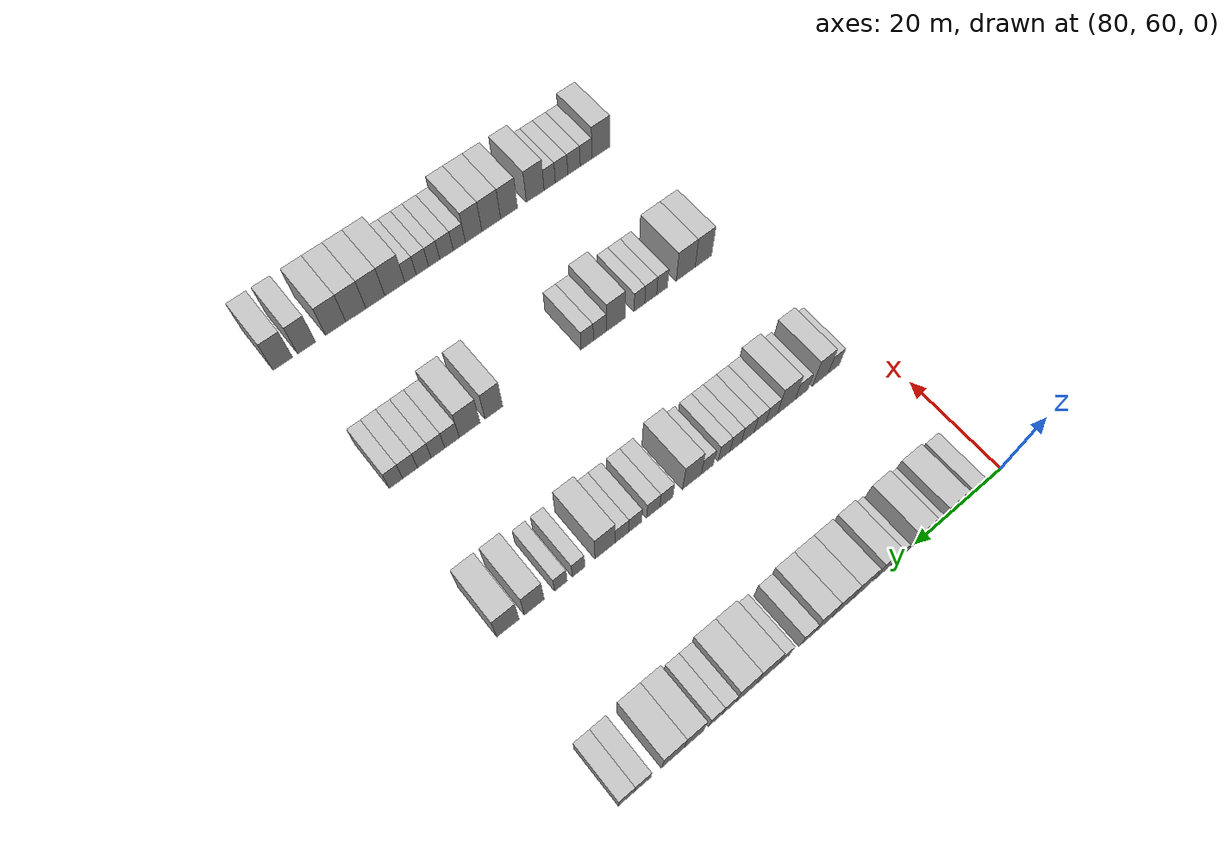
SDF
<sdf version="1.6">
 <world name="default">
  <model name="building_604">
   <static>1</static>
   <pose>85.0000 67.7726 0 0.000000 0.000000 0.000000</pose>
   <link name="link">
    <pose>0 0 3.00 0 0 0</pose>
    <collision name="collision"><geometry><box><size>10.0000 2.9770 6.0000</size></box></geometry></collision>
    <visual name="visual">
     <cast_shadows>0</cast_shadows>
     <geometry><box><size>10.0000 2.9770 6.0000</size></box></geometry>
     <material>
      <script>
       <uri>model://HANNAS_wall/materials/scripts</uri>
       <uri>model://HANNAS_wall/materials/textures</uri>
       <name>vrc/HANNAS_wall</name>
      </script>
     </material>
    </visual>
   </link>
  </model>
  <model name="building_605">
   <static>1</static>
   <pose>85.0000 73.4828 0 0.000000 0.000000 0.000000</pose>
   <link name="link">
    <pose>0 0 4.50 0 0 0</pose>
    <collision name="collision"><geometry><box><size>10.0000 4.4435 9.0000</size></box></geometry></collision>
    <visual name="visual">
     <cast_shadows>0</cast_shadows>
     <geometry><box><size>10.0000 4.4435 9.0000</size></box></geometry>
     <material>
      <script>
       <uri>model://HANNAS_wall/materials/scripts</uri>
       <uri>model://HANNAS_wall/materials/textures</uri>
       <name>vrc/HANNAS_wall</name>
      </script>
     </material>
    </visual>
   </link>
  </model>
  <model name="building_606">
   <static>1</static>
   <pose>85.0000 76.9297 0 0.000000 0.000000 0.000000</pose>
   <link name="link">
    <pose>0 0 3.00 0 0 0</pose>
    <collision name="collision"><geometry><box><size>10.0000 2.4502 6.0000</size></box></geometry></collision>
    <visual name="visual">
     <cast_shadows>0</cast_shadows>
     <geometry><box><size>10.0000 2.4502 6.0000</size></box></geometry>
     <material>
      <script>
       <uri>model://HANNAS_wall/materials/scripts</uri>
       <uri>model://HANNAS_wall/materials/textures</uri>
       <name>vrc/HANNAS_wall</name>
      </script>
     </material>
    </visual>
   </link>
  </model>
  <model name="building_607">
   <static>1</static>
   <pose>85.0000 80.1238 0 0.000000 0.000000 0.000000</pose>
   <link name="link">
    <pose>0 0 4.50 0 0 0</pose>
    <collision name="collision"><geometry><box><size>10.0000 3.9381 9.0000</size></box></geometry></collision>
    <visual name="visual">
     <cast_shadows>0</cast_shadows>
     <geometry><box><size>10.0000 3.9381 9.0000</size></box></geometry>
     <material>
      <script>
       <uri>model://HANNAS_wall/materials/scripts</uri>
       <uri>model://HANNAS_wall/materials/textures</uri>
       <name>vrc/HANNAS_wall</name>
      </script>
     </material>
    </visual>
   </link>
  </model>
  <model name="building_608">
   <static>1</static>
   <pose>85.0000 84.3879 0 0.000000 0.000000 0.000000</pose>
   <link name="link">
    <pose>0 0 3.00 0 0 0</pose>
    <collision name="collision"><geometry><box><size>10.0000 2.5901 6.0000</size></box></geometry></collision>
    <visual name="visual">
     <cast_shadows>0</cast_shadows>
     <geometry><box><size>10.0000 2.5901 6.0000</size></box></geometry>
     <material>
      <script>
       <uri>model://HANNAS_wall/materials/scripts</uri>
       <uri>model://HANNAS_wall/materials/textures</uri>
       <name>vrc/HANNAS_wall</name>
      </script>
     </material>
    </visual>
   </link>
  </model>
  <model name="building_609">
   <static>1</static>
   <pose>85.0000 87.5350 0 0.000000 0.000000 0.000000</pose>
   <link name="link">
    <pose>0 0 4.50 0 0 0</pose>
    <collision name="collision"><geometry><box><size>10.0000 3.7040 9.0000</size></box></geometry></collision>
    <visual name="visual">
     <cast_shadows>0</cast_shadows>
     <geometry><box><size>10.0000 3.7040 9.0000</size></box></geometry>
     <material>
      <script>
       <uri>model://HANNAS_wall/materials/scripts</uri>
       <uri>model://HANNAS_wall/materials/textures</uri>
       <name>vrc/HANNAS_wall</name>
      </script>
     </material>
    </visual>
   </link>
  </model>
  <model name="building_610">
   <static>1</static>
   <pose>85.0000 92.3564 0 0.000000 0.000000 0.000000</pose>
   <link name="link">
    <pose>0 0 4.50 0 0 0</pose>
    <collision name="collision"><geometry><box><size>10.0000 3.9388 9.0000</size></box></geometry></collision>
    <visual name="visual">
     <cast_shadows>0</cast_shadows>
     <geometry><box><size>10.0000 3.9388 9.0000</size></box></geometry>
     <material>
      <script>
       <uri>model://HANNAS_wall/materials/scripts</uri>
       <uri>model://HANNAS_wall/materials/textures</uri>
       <name>vrc/HANNAS_wall</name>
      </script>
     </material>
    </visual>
   </link>
  </model>
  <model name="building_611">
   <static>1</static>
   <pose>85.0000 96.3557 0 0.000000 0.000000 0.000000</pose>
   <link name="link">
    <pose>0 0 4.50 0 0 0</pose>
    <collision name="collision"><geometry><box><size>10.0000 4.0598 9.0000</size></box></geometry></collision>
    <visual name="visual">
     <cast_shadows>0</cast_shadows>
     <geometry><box><size>10.0000 4.0598 9.0000</size></box></geometry>
     <material>
      <script>
       <uri>model://HANNAS_wall/materials/scripts</uri>
       <uri>model://HANNAS_wall/materials/textures</uri>
       <name>vrc/HANNAS_wall</name>
      </script>
     </material>
    </visual>
   </link>
  </model>
  <model name="building_612">
   <static>1</static>
   <pose>85.0000 100.2902 0 0.000000 0.000000 0.000000</pose>
   <link name="link">
    <pose>0 0 4.50 0 0 0</pose>
    <collision name="collision"><geometry><box><size>10.0000 3.8093 9.0000</size></box></geometry></collision>
    <visual name="visual">
     <cast_shadows>0</cast_shadows>
     <geometry><box><size>10.0000 3.8093 9.0000</size></box></geometry>
     <material>
      <script>
       <uri>model://HANNAS_wall/materials/scripts</uri>
       <uri>model://HANNAS_wall/materials/textures</uri>
       <name>vrc/HANNAS_wall</name>
      </script>
     </material>
    </visual>
   </link>
  </model>
  <model name="building_613">
   <static>1</static>
   <pose>85.0000 103.6458 0 0.000000 0.000000 0.000000</pose>
   <link name="link">
    <pose>0 0 3.00 0 0 0</pose>
    <collision name="collision"><geometry><box><size>10.0000 2.9020 6.0000</size></box></geometry></collision>
    <visual name="visual">
     <cast_shadows>0</cast_shadows>
     <geometry><box><size>10.0000 2.9020 6.0000</size></box></geometry>
     <material>
      <script>
       <uri>model://HANNAS_wall/materials/scripts</uri>
       <uri>model://HANNAS_wall/materials/textures</uri>
       <name>vrc/HANNAS_wall</name>
      </script>
     </material>
    </visual>
   </link>
  </model>
  <model name="building_614">
   <static>1</static>
   <pose>85.0000 108.4231 0 0.000000 0.000000 0.000000</pose>
   <link name="link">
    <pose>0 0 3.00 0 0 0</pose>
    <collision name="collision"><geometry><box><size>10.0000 2.6527 6.0000</size></box></geometry></collision>
    <visual name="visual">
     <cast_shadows>0</cast_shadows>
     <geometry><box><size>10.0000 2.6527 6.0000</size></box></geometry>
     <material>
      <script>
       <uri>model://HANNAS_wall/materials/scripts</uri>
       <uri>model://HANNAS_wall/materials/textures</uri>
       <name>vrc/HANNAS_wall</name>
      </script>
     </material>
    </visual>
   </link>
  </model>
  <model name="building_615">
   <static>1</static>
   <pose>85.0000 111.8516 0 0.000000 0.000000 0.000000</pose>
   <link name="link">
    <pose>0 0 4.50 0 0 0</pose>
    <collision name="collision"><geometry><box><size>10.0000 4.2042 9.0000</size></box></geometry></collision>
    <visual name="visual">
     <cast_shadows>0</cast_shadows>
     <geometry><box><size>10.0000 4.2042 9.0000</size></box></geometry>
     <material>
      <script>
       <uri>model://HANNAS_wall/materials/scripts</uri>
       <uri>model://HANNAS_wall/materials/textures</uri>
       <name>vrc/HANNAS_wall</name>
      </script>
     </material>
    </visual>
   </link>
  </model>
  <model name="building_616">
   <static>1</static>
   <pose>85.0000 116.0428 0 0.000000 0.000000 0.000000</pose>
   <link name="link">
    <pose>0 0 4.50 0 0 0</pose>
    <collision name="collision"><geometry><box><size>10.0000 4.1781 9.0000</size></box></geometry></collision>
    <visual name="visual">
     <cast_shadows>0</cast_shadows>
     <geometry><box><size>10.0000 4.1781 9.0000</size></box></geometry>
     <material>
      <script>
       <uri>model://HANNAS_wall/materials/scripts</uri>
       <uri>model://HANNAS_wall/materials/textures</uri>
       <name>vrc/HANNAS_wall</name>
      </script>
     </material>
    </visual>
   </link>
  </model>
  <model name="building_617">
   <static>1</static>
   <pose>85.0000 119.4093 0 0.000000 0.000000 0.000000</pose>
   <link name="link">
    <pose>0 0 3.00 0 0 0</pose>
    <collision name="collision"><geometry><box><size>10.0000 2.5550 6.0000</size></box></geometry></collision>
    <visual name="visual">
     <cast_shadows>0</cast_shadows>
     <geometry><box><size>10.0000 2.5550 6.0000</size></box></geometry>
     <material>
      <script>
       <uri>model://HANNAS_wall/materials/scripts</uri>
       <uri>model://HANNAS_wall/materials/textures</uri>
       <name>vrc/HANNAS_wall</name>
      </script>
     </material>
    </visual>
   </link>
  </model>
  <model name="building_618">
   <static>1</static>
   <pose>85.0000 122.0138 0 0.000000 0.000000 0.000000</pose>
   <link name="link">
    <pose>0 0 3.00 0 0 0</pose>
    <collision name="collision"><geometry><box><size>10.0000 2.6540 6.0000</size></box></geometry></collision>
    <visual name="visual">
     <cast_shadows>0</cast_shadows>
     <geometry><box><size>10.0000 2.6540 6.0000</size></box></geometry>
     <material>
      <script>
       <uri>model://HANNAS_wall/materials/scripts</uri>
       <uri>model://HANNAS_wall/materials/textures</uri>
       <name>vrc/HANNAS_wall</name>
      </script>
     </material>
    </visual>
   </link>
  </model>
  <model name="building_619">
   <static>1</static>
   <pose>85.0000 126.2127 0 0.000000 0.000000 0.000000</pose>
   <link name="link">
    <pose>0 0 4.50 0 0 0</pose>
    <collision name="collision"><geometry><box><size>10.0000 3.7439 9.0000</size></box></geometry></collision>
    <visual name="visual">
     <cast_shadows>0</cast_shadows>
     <geometry><box><size>10.0000 3.7439 9.0000</size></box></geometry>
     <material>
      <script>
       <uri>model://HANNAS_wall/materials/scripts</uri>
       <uri>model://HANNAS_wall/materials/textures</uri>
       <name>vrc/HANNAS_wall</name>
      </script>
     </material>
    </visual>
   </link>
  </model>
  <model name="building_620">
   <static>1</static>
   <pose>85.0000 130.2145 0 0.000000 0.000000 0.000000</pose>
   <link name="link">
    <pose>0 0 4.50 0 0 0</pose>
    <collision name="collision"><geometry><box><size>10.0000 4.2595 9.0000</size></box></geometry></collision>
    <visual name="visual">
     <cast_shadows>0</cast_shadows>
     <geometry><box><size>10.0000 4.2595 9.0000</size></box></geometry>
     <material>
      <script>
       <uri>model://HANNAS_wall/materials/scripts</uri>
       <uri>model://HANNAS_wall/materials/textures</uri>
       <name>vrc/HANNAS_wall</name>
      </script>
     </material>
    </visual>
   </link>
  </model>
  <model name="building_621">
   <static>1</static>
   <pose>85.0000 135.8366 0 0.000000 0.000000 0.000000</pose>
   <link name="link">
    <pose>0 0 3.00 0 0 0</pose>
    <collision name="collision"><geometry><box><size>10.0000 2.9847 6.0000</size></box></geometry></collision>
    <visual name="visual">
     <cast_shadows>0</cast_shadows>
     <geometry><box><size>10.0000 2.9847 6.0000</size></box></geometry>
     <material>
      <script>
       <uri>model://HANNAS_wall/materials/scripts</uri>
       <uri>model://HANNAS_wall/materials/textures</uri>
       <name>vrc/HANNAS_wall</name>
      </script>
     </material>
    </visual>
   </link>
  </model>
  <model name="building_622">
   <static>1</static>
   <pose>85.0000 138.8274 0 0.000000 0.000000 0.000000</pose>
   <link name="link">
    <pose>0 0 3.00 0 0 0</pose>
    <collision name="collision"><geometry><box><size>10.0000 2.9970 6.0000</size></box></geometry></collision>
    <visual name="visual">
     <cast_shadows>0</cast_shadows>
     <geometry><box><size>10.0000 2.9970 6.0000</size></box></geometry>
     <material>
      <script>
       <uri>model://HANNAS_wall/materials/scripts</uri>
       <uri>model://HANNAS_wall/materials/textures</uri>
       <name>vrc/HANNAS_wall</name>
      </script>
     </material>
    </visual>
   </link>
  </model>
  <model name="building_847">
   <static>1</static>
   <pose>115.0000 68.2768 0 0.000000 0.000000 0.000000</pose>
   <link name="link">
    <pose>0 0 3.00 0 0 0</pose>
    <collision name="collision"><geometry><box><size>10.0000 2.6871 6.0000</size></box></geometry></collision>
    <visual name="visual">
     <cast_shadows>0</cast_shadows>
     <geometry><box><size>10.0000 2.6871 6.0000</size></box></geometry>
     <material>
      <script>
       <uri>model://HANNAS_wall/materials/scripts</uri>
       <uri>model://HANNAS_wall/materials/textures</uri>
       <name>vrc/HANNAS_wall</name>
      </script>
     </material>
    </visual>
   </link>
  </model>
  <model name="building_848">
   <static>1</static>
   <pose>115.0000 71.4535 0 0.000000 0.000000 0.000000</pose>
   <link name="link">
    <pose>0 0 4.50 0 0 0</pose>
    <collision name="collision"><geometry><box><size>10.0000 3.6663 9.0000</size></box></geometry></collision>
    <visual name="visual">
     <cast_shadows>0</cast_shadows>
     <geometry><box><size>10.0000 3.6663 9.0000</size></box></geometry>
     <material>
      <script>
       <uri>model://HANNAS_wall/materials/scripts</uri>
       <uri>model://HANNAS_wall/materials/textures</uri>
       <name>vrc/HANNAS_wall</name>
      </script>
     </material>
    </visual>
   </link>
  </model>
  <model name="building_849">
   <static>1</static>
   <pose>115.0000 75.7692 0 0.000000 0.000000 0.000000</pose>
   <link name="link">
    <pose>0 0 3.00 0 0 0</pose>
    <collision name="collision"><geometry><box><size>10.0000 2.9650 6.0000</size></box></geometry></collision>
    <visual name="visual">
     <cast_shadows>0</cast_shadows>
     <geometry><box><size>10.0000 2.9650 6.0000</size></box></geometry>
     <material>
      <script>
       <uri>model://HANNAS_wall/materials/scripts</uri>
       <uri>model://HANNAS_wall/materials/textures</uri>
       <name>vrc/HANNAS_wall</name>
      </script>
     </material>
    </visual>
   </link>
  </model>
  <model name="building_850">
   <static>1</static>
   <pose>115.0000 79.2755 0 0.000000 0.000000 0.000000</pose>
   <link name="link">
    <pose>0 0 4.50 0 0 0</pose>
    <collision name="collision"><geometry><box><size>10.0000 4.0477 9.0000</size></box></geometry></collision>
    <visual name="visual">
     <cast_shadows>0</cast_shadows>
     <geometry><box><size>10.0000 4.0477 9.0000</size></box></geometry>
     <material>
      <script>
       <uri>model://HANNAS_wall/materials/scripts</uri>
       <uri>model://HANNAS_wall/materials/textures</uri>
       <name>vrc/HANNAS_wall</name>
      </script>
     </material>
    </visual>
   </link>
  </model>
  <model name="building_851">
   <static>1</static>
   <pose>115.0000 82.6199 0 0.000000 0.000000 0.000000</pose>
   <link name="link">
    <pose>0 0 3.00 0 0 0</pose>
    <collision name="collision"><geometry><box><size>10.0000 2.6411 6.0000</size></box></geometry></collision>
    <visual name="visual">
     <cast_shadows>0</cast_shadows>
     <geometry><box><size>10.0000 2.6411 6.0000</size></box></geometry>
     <material>
      <script>
       <uri>model://HANNAS_wall/materials/scripts</uri>
       <uri>model://HANNAS_wall/materials/textures</uri>
       <name>vrc/HANNAS_wall</name>
      </script>
     </material>
    </visual>
   </link>
  </model>
  <model name="building_852">
   <static>1</static>
   <pose>115.0000 85.2299 0 0.000000 0.000000 0.000000</pose>
   <link name="link">
    <pose>0 0 3.00 0 0 0</pose>
    <collision name="collision"><geometry><box><size>10.0000 2.5789 6.0000</size></box></geometry></collision>
    <visual name="visual">
     <cast_shadows>0</cast_shadows>
     <geometry><box><size>10.0000 2.5789 6.0000</size></box></geometry>
     <material>
      <script>
       <uri>model://HANNAS_wall/materials/scripts</uri>
       <uri>model://HANNAS_wall/materials/textures</uri>
       <name>vrc/HANNAS_wall</name>
      </script>
     </material>
    </visual>
   </link>
  </model>
  <model name="building_853">
   <static>1</static>
   <pose>115.0000 87.9330 0 0.000000 0.000000 0.000000</pose>
   <link name="link">
    <pose>0 0 3.00 0 0 0</pose>
    <collision name="collision"><geometry><box><size>10.0000 2.8274 6.0000</size></box></geometry></collision>
    <visual name="visual">
     <cast_shadows>0</cast_shadows>
     <geometry><box><size>10.0000 2.8274 6.0000</size></box></geometry>
     <material>
      <script>
       <uri>model://HANNAS_wall/materials/scripts</uri>
       <uri>model://HANNAS_wall/materials/textures</uri>
       <name>vrc/HANNAS_wall</name>
      </script>
     </material>
    </visual>
   </link>
  </model>
  <model name="building_854">
   <static>1</static>
   <pose>115.0000 90.6168 0 0.000000 0.000000 0.000000</pose>
   <link name="link">
    <pose>0 0 3.00 0 0 0</pose>
    <collision name="collision"><geometry><box><size>10.0000 2.5401 6.0000</size></box></geometry></collision>
    <visual name="visual">
     <cast_shadows>0</cast_shadows>
     <geometry><box><size>10.0000 2.5401 6.0000</size></box></geometry>
     <material>
      <script>
       <uri>model://HANNAS_wall/materials/scripts</uri>
       <uri>model://HANNAS_wall/materials/textures</uri>
       <name>vrc/HANNAS_wall</name>
      </script>
     </material>
    </visual>
   </link>
  </model>
  <model name="building_855">
   <static>1</static>
   <pose>115.0000 93.1668 0 0.000000 0.000000 0.000000</pose>
   <link name="link">
    <pose>0 0 3.00 0 0 0</pose>
    <collision name="collision"><geometry><box><size>10.0000 2.5598 6.0000</size></box></geometry></collision>
    <visual name="visual">
     <cast_shadows>0</cast_shadows>
     <geometry><box><size>10.0000 2.5598 6.0000</size></box></geometry>
     <material>
      <script>
       <uri>model://HANNAS_wall/materials/scripts</uri>
       <uri>model://HANNAS_wall/materials/textures</uri>
       <name>vrc/HANNAS_wall</name>
      </script>
     </material>
    </visual>
   </link>
  </model>
  <model name="building_856">
   <static>1</static>
   <pose>115.0000 96.7763 0 0.000000 0.000000 0.000000</pose>
   <link name="link">
    <pose>0 0 3.00 0 0 0</pose>
    <collision name="collision"><geometry><box><size>10.0000 2.6592 6.0000</size></box></geometry></collision>
    <visual name="visual">
     <cast_shadows>0</cast_shadows>
     <geometry><box><size>10.0000 2.6592 6.0000</size></box></geometry>
     <material>
      <script>
       <uri>model://HANNAS_wall/materials/scripts</uri>
       <uri>model://HANNAS_wall/materials/textures</uri>
       <name>vrc/HANNAS_wall</name>
      </script>
     </material>
    </visual>
   </link>
  </model>
  <model name="building_857">
   <static>1</static>
   <pose>115.0000 100.1114 0 0.000000 0.000000 0.000000</pose>
   <link name="link">
    <pose>0 0 4.50 0 0 0</pose>
    <collision name="collision"><geometry><box><size>10.0000 4.0110 9.0000</size></box></geometry></collision>
    <visual name="visual">
     <cast_shadows>0</cast_shadows>
     <geometry><box><size>10.0000 4.0110 9.0000</size></box></geometry>
     <material>
      <script>
       <uri>model://HANNAS_wall/materials/scripts</uri>
       <uri>model://HANNAS_wall/materials/textures</uri>
       <name>vrc/HANNAS_wall</name>
      </script>
     </material>
    </visual>
   </link>
  </model>
  <model name="building_858">
   <static>1</static>
   <pose>115.0000 105.5068 0 0.000000 0.000000 0.000000</pose>
   <link name="link">
    <pose>0 0 3.00 0 0 0</pose>
    <collision name="collision"><geometry><box><size>10.0000 2.7798 6.0000</size></box></geometry></collision>
    <visual name="visual">
     <cast_shadows>0</cast_shadows>
     <geometry><box><size>10.0000 2.7798 6.0000</size></box></geometry>
     <material>
      <script>
       <uri>model://HANNAS_wall/materials/scripts</uri>
       <uri>model://HANNAS_wall/materials/textures</uri>
       <name>vrc/HANNAS_wall</name>
      </script>
     </material>
    </visual>
   </link>
  </model>
  <model name="building_859">
   <static>1</static>
   <pose>115.0000 108.2663 0 0.000000 0.000000 0.000000</pose>
   <link name="link">
    <pose>0 0 3.00 0 0 0</pose>
    <collision name="collision"><geometry><box><size>10.0000 2.7391 6.0000</size></box></geometry></collision>
    <visual name="visual">
     <cast_shadows>0</cast_shadows>
     <geometry><box><size>10.0000 2.7391 6.0000</size></box></geometry>
     <material>
      <script>
       <uri>model://HANNAS_wall/materials/scripts</uri>
       <uri>model://HANNAS_wall/materials/textures</uri>
       <name>vrc/HANNAS_wall</name>
      </script>
     </material>
    </visual>
   </link>
  </model>
  <model name="building_860">
   <static>1</static>
   <pose>115.0000 111.9726 0 0.000000 0.000000 0.000000</pose>
   <link name="link">
    <pose>0 0 3.00 0 0 0</pose>
    <collision name="collision"><geometry><box><size>10.0000 2.6736 6.0000</size></box></geometry></collision>
    <visual name="visual">
     <cast_shadows>0</cast_shadows>
     <geometry><box><size>10.0000 2.6736 6.0000</size></box></geometry>
     <material>
      <script>
       <uri>model://HANNAS_wall/materials/scripts</uri>
       <uri>model://HANNAS_wall/materials/textures</uri>
       <name>vrc/HANNAS_wall</name>
      </script>
     </material>
    </visual>
   </link>
  </model>
  <model name="building_861">
   <static>1</static>
   <pose>115.0000 114.6844 0 0.000000 0.000000 0.000000</pose>
   <link name="link">
    <pose>0 0 3.00 0 0 0</pose>
    <collision name="collision"><geometry><box><size>10.0000 2.7500 6.0000</size></box></geometry></collision>
    <visual name="visual">
     <cast_shadows>0</cast_shadows>
     <geometry><box><size>10.0000 2.7500 6.0000</size></box></geometry>
     <material>
      <script>
       <uri>model://HANNAS_wall/materials/scripts</uri>
       <uri>model://HANNAS_wall/materials/textures</uri>
       <name>vrc/HANNAS_wall</name>
      </script>
     </material>
    </visual>
   </link>
  </model>
  <model name="building_862">
   <static>1</static>
   <pose>115.0000 118.1008 0 0.000000 0.000000 0.000000</pose>
   <link name="link">
    <pose>0 0 4.50 0 0 0</pose>
    <collision name="collision"><geometry><box><size>10.0000 4.0828 9.0000</size></box></geometry></collision>
    <visual name="visual">
     <cast_shadows>0</cast_shadows>
     <geometry><box><size>10.0000 4.0828 9.0000</size></box></geometry>
     <material>
      <script>
       <uri>model://HANNAS_wall/materials/scripts</uri>
       <uri>model://HANNAS_wall/materials/textures</uri>
       <name>vrc/HANNAS_wall</name>
      </script>
     </material>
    </visual>
   </link>
  </model>
  <model name="building_863">
   <static>1</static>
   <pose>115.0000 123.3894 0 0.000000 0.000000 0.000000</pose>
   <link name="link">
    <pose>0 0 3.00 0 0 0</pose>
    <collision name="collision"><geometry><box><size>10.0000 2.4942 6.0000</size></box></geometry></collision>
    <visual name="visual">
     <cast_shadows>0</cast_shadows>
     <geometry><box><size>10.0000 2.4942 6.0000</size></box></geometry>
     <material>
      <script>
       <uri>model://HANNAS_wall/materials/scripts</uri>
       <uri>model://HANNAS_wall/materials/textures</uri>
       <name>vrc/HANNAS_wall</name>
      </script>
     </material>
    </visual>
   </link>
  </model>
  <model name="building_864">
   <static>1</static>
   <pose>115.0000 126.8843 0 0.000000 0.000000 0.000000</pose>
   <link name="link">
    <pose>0 0 3.00 0 0 0</pose>
    <collision name="collision"><geometry><box><size>10.0000 2.4955 6.0000</size></box></geometry></collision>
    <visual name="visual">
     <cast_shadows>0</cast_shadows>
     <geometry><box><size>10.0000 2.4955 6.0000</size></box></geometry>
     <material>
      <script>
       <uri>model://HANNAS_wall/materials/scripts</uri>
       <uri>model://HANNAS_wall/materials/textures</uri>
       <name>vrc/HANNAS_wall</name>
      </script>
     </material>
    </visual>
   </link>
  </model>
  <model name="building_865">
   <static>1</static>
   <pose>115.0000 132.0384 0 0.000000 0.000000 0.000000</pose>
   <link name="link">
    <pose>0 0 4.50 0 0 0</pose>
    <collision name="collision"><geometry><box><size>10.0000 3.8128 9.0000</size></box></geometry></collision>
    <visual name="visual">
     <cast_shadows>0</cast_shadows>
     <geometry><box><size>10.0000 3.8128 9.0000</size></box></geometry>
     <material>
      <script>
       <uri>model://HANNAS_wall/materials/scripts</uri>
       <uri>model://HANNAS_wall/materials/textures</uri>
       <name>vrc/HANNAS_wall</name>
      </script>
     </material>
    </visual>
   </link>
  </model>
  <model name="building_866">
   <static>1</static>
   <pose>115.0000 137.0686 0 0.000000 0.000000 0.000000</pose>
   <link name="link">
    <pose>0 0 4.50 0 0 0</pose>
    <collision name="collision"><geometry><box><size>10.0000 4.2477 9.0000</size></box></geometry></collision>
    <visual name="visual">
     <cast_shadows>0</cast_shadows>
     <geometry><box><size>10.0000 4.2477 9.0000</size></box></geometry>
     <material>
      <script>
       <uri>model://HANNAS_wall/materials/scripts</uri>
       <uri>model://HANNAS_wall/materials/textures</uri>
       <name>vrc/HANNAS_wall</name>
      </script>
     </material>
    </visual>
   </link>
  </model>
  <model name="building_1081">
   <static>1</static>
   <pose>145.0000 70.9361 0 0.000000 0.000000 0.000000</pose>
   <link name="link">
    <pose>0 0 4.50 0 0 0</pose>
    <collision name="collision"><geometry><box><size>10.0000 3.9351 9.0000</size></box></geometry></collision>
    <visual name="visual">
     <cast_shadows>0</cast_shadows>
     <geometry><box><size>10.0000 3.9351 9.0000</size></box></geometry>
     <material>
      <script>
       <uri>model://HANNAS_wall/materials/scripts</uri>
       <uri>model://HANNAS_wall/materials/textures</uri>
       <name>vrc/HANNAS_wall</name>
      </script>
     </material>
    </visual>
   </link>
  </model>
  <model name="building_1082">
   <static>1</static>
   <pose>145.0000 75.1094 0 0.000000 0.000000 0.000000</pose>
   <link name="link">
    <pose>0 0 4.50 0 0 0</pose>
    <collision name="collision"><geometry><box><size>10.0000 4.4114 9.0000</size></box></geometry></collision>
    <visual name="visual">
     <cast_shadows>0</cast_shadows>
     <geometry><box><size>10.0000 4.4114 9.0000</size></box></geometry>
     <material>
      <script>
       <uri>model://HANNAS_wall/materials/scripts</uri>
       <uri>model://HANNAS_wall/materials/textures</uri>
       <name>vrc/HANNAS_wall</name>
      </script>
     </material>
    </visual>
   </link>
  </model>
  <model name="building_1083">
   <static>1</static>
   <pose>145.0000 80.5705 0 0.000000 0.000000 0.000000</pose>
   <link name="link">
    <pose>0 0 3.00 0 0 0</pose>
    <collision name="collision"><geometry><box><size>10.0000 2.5108 6.0000</size></box></geometry></collision>
    <visual name="visual">
     <cast_shadows>0</cast_shadows>
     <geometry><box><size>10.0000 2.5108 6.0000</size></box></geometry>
     <material>
      <script>
       <uri>model://HANNAS_wall/materials/scripts</uri>
       <uri>model://HANNAS_wall/materials/textures</uri>
       <name>vrc/HANNAS_wall</name>
      </script>
     </material>
    </visual>
   </link>
  </model>
  <model name="building_1084">
   <static>1</static>
   <pose>145.0000 83.1975 0 0.000000 0.000000 0.000000</pose>
   <link name="link">
    <pose>0 0 3.00 0 0 0</pose>
    <collision name="collision"><geometry><box><size>10.0000 2.7433 6.0000</size></box></geometry></collision>
    <visual name="visual">
     <cast_shadows>0</cast_shadows>
     <geometry><box><size>10.0000 2.7433 6.0000</size></box></geometry>
     <material>
      <script>
       <uri>model://HANNAS_wall/materials/scripts</uri>
       <uri>model://HANNAS_wall/materials/textures</uri>
       <name>vrc/HANNAS_wall</name>
      </script>
     </material>
    </visual>
   </link>
  </model>
  <model name="building_1085">
   <static>1</static>
   <pose>145.0000 85.7842 0 0.000000 0.000000 0.000000</pose>
   <link name="link">
    <pose>0 0 3.00 0 0 0</pose>
    <collision name="collision"><geometry><box><size>10.0000 2.4302 6.0000</size></box></geometry></collision>
    <visual name="visual">
     <cast_shadows>0</cast_shadows>
     <geometry><box><size>10.0000 2.4302 6.0000</size></box></geometry>
     <material>
      <script>
       <uri>model://HANNAS_wall/materials/scripts</uri>
       <uri>model://HANNAS_wall/materials/textures</uri>
       <name>vrc/HANNAS_wall</name>
      </script>
     </material>
    </visual>
   </link>
  </model>
  <model name="building_1086">
   <static>1</static>
   <pose>145.0000 91.0767 0 0.000000 0.000000 0.000000</pose>
   <link name="link">
    <pose>0 0 4.50 0 0 0</pose>
    <collision name="collision"><geometry><box><size>10.0000 4.1548 9.0000</size></box></geometry></collision>
    <visual name="visual">
     <cast_shadows>0</cast_shadows>
     <geometry><box><size>10.0000 4.1548 9.0000</size></box></geometry>
     <material>
      <script>
       <uri>model://HANNAS_wall/materials/scripts</uri>
       <uri>model://HANNAS_wall/materials/textures</uri>
       <name>vrc/HANNAS_wall</name>
      </script>
     </material>
    </visual>
   </link>
  </model>
  <model name="building_1087">
   <static>1</static>
   <pose>145.0000 94.5932 0 0.000000 0.000000 0.000000</pose>
   <link name="link">
    <pose>0 0 3.00 0 0 0</pose>
    <collision name="collision"><geometry><box><size>10.0000 2.8782 6.0000</size></box></geometry></collision>
    <visual name="visual">
     <cast_shadows>0</cast_shadows>
     <geometry><box><size>10.0000 2.8782 6.0000</size></box></geometry>
     <material>
      <script>
       <uri>model://HANNAS_wall/materials/scripts</uri>
       <uri>model://HANNAS_wall/materials/textures</uri>
       <name>vrc/HANNAS_wall</name>
      </script>
     </material>
    </visual>
   </link>
  </model>
  <model name="building_1088">
   <static>1</static>
   <pose>145.0000 97.3823 0 0.000000 0.000000 0.000000</pose>
   <link name="link">
    <pose>0 0 3.00 0 0 0</pose>
    <collision name="collision"><geometry><box><size>10.0000 2.7000 6.0000</size></box></geometry></collision>
    <visual name="visual">
     <cast_shadows>0</cast_shadows>
     <geometry><box><size>10.0000 2.7000 6.0000</size></box></geometry>
     <material>
      <script>
       <uri>model://HANNAS_wall/materials/scripts</uri>
       <uri>model://HANNAS_wall/materials/textures</uri>
       <name>vrc/HANNAS_wall</name>
      </script>
     </material>
    </visual>
   </link>
  </model>
  <model name="building_1089">
   <static>1</static>
   <pose>145.0000 117.2344 0 0.000000 0.000000 0.000000</pose>
   <link name="link">
    <pose>0 0 4.50 0 0 0</pose>
    <collision name="collision"><geometry><box><size>10.0000 3.6681 9.0000</size></box></geometry></collision>
    <visual name="visual">
     <cast_shadows>0</cast_shadows>
     <geometry><box><size>10.0000 3.6681 9.0000</size></box></geometry>
     <material>
      <script>
       <uri>model://HANNAS_wall/materials/scripts</uri>
       <uri>model://HANNAS_wall/materials/textures</uri>
       <name>vrc/HANNAS_wall</name>
      </script>
     </material>
    </visual>
   </link>
  </model>
  <model name="building_1090">
   <static>1</static>
   <pose>145.0000 122.1755 0 0.000000 0.000000 0.000000</pose>
   <link name="link">
    <pose>0 0 4.50 0 0 0</pose>
    <collision name="collision"><geometry><box><size>10.0000 4.2141 9.0000</size></box></geometry></collision>
    <visual name="visual">
     <cast_shadows>0</cast_shadows>
     <geometry><box><size>10.0000 4.2141 9.0000</size></box></geometry>
     <material>
      <script>
       <uri>model://HANNAS_wall/materials/scripts</uri>
       <uri>model://HANNAS_wall/materials/textures</uri>
       <name>vrc/HANNAS_wall</name>
      </script>
     </material>
    </visual>
   </link>
  </model>
  <model name="building_1091">
   <static>1</static>
   <pose>145.0000 125.7416 0 0.000000 0.000000 0.000000</pose>
   <link name="link">
    <pose>0 0 3.00 0 0 0</pose>
    <collision name="collision"><geometry><box><size>10.0000 2.9180 6.0000</size></box></geometry></collision>
    <visual name="visual">
     <cast_shadows>0</cast_shadows>
     <geometry><box><size>10.0000 2.9180 6.0000</size></box></geometry>
     <material>
      <script>
       <uri>model://HANNAS_wall/materials/scripts</uri>
       <uri>model://HANNAS_wall/materials/textures</uri>
       <name>vrc/HANNAS_wall</name>
      </script>
     </material>
    </visual>
   </link>
  </model>
  <model name="building_1092">
   <static>1</static>
   <pose>145.0000 128.5495 0 0.000000 0.000000 0.000000</pose>
   <link name="link">
    <pose>0 0 3.00 0 0 0</pose>
    <collision name="collision"><geometry><box><size>10.0000 2.6980 6.0000</size></box></geometry></collision>
    <visual name="visual">
     <cast_shadows>0</cast_shadows>
     <geometry><box><size>10.0000 2.6980 6.0000</size></box></geometry>
     <material>
      <script>
       <uri>model://HANNAS_wall/materials/scripts</uri>
       <uri>model://HANNAS_wall/materials/textures</uri>
       <name>vrc/HANNAS_wall</name>
      </script>
     </material>
    </visual>
   </link>
  </model>
  <model name="building_1093">
   <static>1</static>
   <pose>145.0000 131.2662 0 0.000000 0.000000 0.000000</pose>
   <link name="link">
    <pose>0 0 3.00 0 0 0</pose>
    <collision name="collision"><geometry><box><size>10.0000 2.7354 6.0000</size></box></geometry></collision>
    <visual name="visual">
     <cast_shadows>0</cast_shadows>
     <geometry><box><size>10.0000 2.7354 6.0000</size></box></geometry>
     <material>
      <script>
       <uri>model://HANNAS_wall/materials/scripts</uri>
       <uri>model://HANNAS_wall/materials/textures</uri>
       <name>vrc/HANNAS_wall</name>
      </script>
     </material>
    </visual>
   </link>
  </model>
  <model name="building_1094">
   <static>1</static>
   <pose>145.0000 134.0827 0 0.000000 0.000000 0.000000</pose>
   <link name="link">
    <pose>0 0 3.00 0 0 0</pose>
    <collision name="collision"><geometry><box><size>10.0000 2.8975 6.0000</size></box></geometry></collision>
    <visual name="visual">
     <cast_shadows>0</cast_shadows>
     <geometry><box><size>10.0000 2.8975 6.0000</size></box></geometry>
     <material>
      <script>
       <uri>model://HANNAS_wall/materials/scripts</uri>
       <uri>model://HANNAS_wall/materials/textures</uri>
       <name>vrc/HANNAS_wall</name>
      </script>
     </material>
    </visual>
   </link>
  </model>
  <model name="building_1095">
   <static>1</static>
   <pose>145.0000 136.8384 0 0.000000 0.000000 0.000000</pose>
   <link name="link">
    <pose>0 0 3.00 0 0 0</pose>
    <collision name="collision"><geometry><box><size>10.0000 2.6138 6.0000</size></box></geometry></collision>
    <visual name="visual">
     <cast_shadows>0</cast_shadows>
     <geometry><box><size>10.0000 2.6138 6.0000</size></box></geometry>
     <material>
      <script>
       <uri>model://HANNAS_wall/materials/scripts</uri>
       <uri>model://HANNAS_wall/materials/textures</uri>
       <name>vrc/HANNAS_wall</name>
      </script>
     </material>
    </visual>
   </link>
  </model>
  <model name="building_1286">
   <static>1</static>
   <pose>175.0000 69.8280 0 0.000000 0.000000 0.000000</pose>
   <link name="link">
    <pose>0 0 4.50 0 0 0</pose>
    <collision name="collision"><geometry><box><size>10.0000 4.2610 9.0000</size></box></geometry></collision>
    <visual name="visual">
     <cast_shadows>0</cast_shadows>
     <geometry><box><size>10.0000 4.2610 9.0000</size></box></geometry>
     <material>
      <script>
       <uri>model://HANNAS_wall/materials/scripts</uri>
       <uri>model://HANNAS_wall/materials/textures</uri>
       <name>vrc/HANNAS_wall</name>
      </script>
     </material>
    </visual>
   </link>
  </model>
  <model name="building_1287">
   <static>1</static>
   <pose>175.0000 73.3544 0 0.000000 0.000000 0.000000</pose>
   <link name="link">
    <pose>0 0 3.00 0 0 0</pose>
    <collision name="collision"><geometry><box><size>10.0000 2.7917 6.0000</size></box></geometry></collision>
    <visual name="visual">
     <cast_shadows>0</cast_shadows>
     <geometry><box><size>10.0000 2.7917 6.0000</size></box></geometry>
     <material>
      <script>
       <uri>model://HANNAS_wall/materials/scripts</uri>
       <uri>model://HANNAS_wall/materials/textures</uri>
       <name>vrc/HANNAS_wall</name>
      </script>
     </material>
    </visual>
   </link>
  </model>
  <model name="building_1288">
   <static>1</static>
   <pose>175.0000 76.2250 0 0.000000 0.000000 0.000000</pose>
   <link name="link">
    <pose>0 0 3.00 0 0 0</pose>
    <collision name="collision"><geometry><box><size>10.0000 2.9496 6.0000</size></box></geometry></collision>
    <visual name="visual">
     <cast_shadows>0</cast_shadows>
     <geometry><box><size>10.0000 2.9496 6.0000</size></box></geometry>
     <material>
      <script>
       <uri>model://HANNAS_wall/materials/scripts</uri>
       <uri>model://HANNAS_wall/materials/textures</uri>
       <name>vrc/HANNAS_wall</name>
      </script>
     </material>
    </visual>
   </link>
  </model>
  <model name="building_1289">
   <static>1</static>
   <pose>175.0000 79.1669 0 0.000000 0.000000 0.000000</pose>
   <link name="link">
    <pose>0 0 3.00 0 0 0</pose>
    <collision name="collision"><geometry><box><size>10.0000 2.9342 6.0000</size></box></geometry></collision>
    <visual name="visual">
     <cast_shadows>0</cast_shadows>
     <geometry><box><size>10.0000 2.9342 6.0000</size></box></geometry>
     <material>
      <script>
       <uri>model://HANNAS_wall/materials/scripts</uri>
       <uri>model://HANNAS_wall/materials/textures</uri>
       <name>vrc/HANNAS_wall</name>
      </script>
     </material>
    </visual>
   </link>
  </model>
  <model name="building_1290">
   <static>1</static>
   <pose>175.0000 81.9410 0 0.000000 0.000000 0.000000</pose>
   <link name="link">
    <pose>0 0 3.00 0 0 0</pose>
    <collision name="collision"><geometry><box><size>10.0000 2.6140 6.0000</size></box></geometry></collision>
    <visual name="visual">
     <cast_shadows>0</cast_shadows>
     <geometry><box><size>10.0000 2.6140 6.0000</size></box></geometry>
     <material>
      <script>
       <uri>model://HANNAS_wall/materials/scripts</uri>
       <uri>model://HANNAS_wall/materials/textures</uri>
       <name>vrc/HANNAS_wall</name>
      </script>
     </material>
    </visual>
   </link>
  </model>
  <model name="building_1291">
   <static>1</static>
   <pose>175.0000 85.3030 0 0.000000 0.000000 0.000000</pose>
   <link name="link">
    <pose>0 0 4.50 0 0 0</pose>
    <collision name="collision"><geometry><box><size>10.0000 4.1099 9.0000</size></box></geometry></collision>
    <visual name="visual">
     <cast_shadows>0</cast_shadows>
     <geometry><box><size>10.0000 4.1099 9.0000</size></box></geometry>
     <material>
      <script>
       <uri>model://HANNAS_wall/materials/scripts</uri>
       <uri>model://HANNAS_wall/materials/textures</uri>
       <name>vrc/HANNAS_wall</name>
      </script>
     </material>
    </visual>
   </link>
  </model>
  <model name="building_1292">
   <static>1</static>
   <pose>175.0000 91.2815 0 0.000000 0.000000 0.000000</pose>
   <link name="link">
    <pose>0 0 4.50 0 0 0</pose>
    <collision name="collision"><geometry><box><size>10.0000 3.8471 9.0000</size></box></geometry></collision>
    <visual name="visual">
     <cast_shadows>0</cast_shadows>
     <geometry><box><size>10.0000 3.8471 9.0000</size></box></geometry>
     <material>
      <script>
       <uri>model://HANNAS_wall/materials/scripts</uri>
       <uri>model://HANNAS_wall/materials/textures</uri>
       <name>vrc/HANNAS_wall</name>
      </script>
     </material>
    </visual>
   </link>
  </model>
  <model name="building_1293">
   <static>1</static>
   <pose>175.0000 95.2996 0 0.000000 0.000000 0.000000</pose>
   <link name="link">
    <pose>0 0 4.50 0 0 0</pose>
    <collision name="collision"><geometry><box><size>10.0000 4.1893 9.0000</size></box></geometry></collision>
    <visual name="visual">
     <cast_shadows>0</cast_shadows>
     <geometry><box><size>10.0000 4.1893 9.0000</size></box></geometry>
     <material>
      <script>
       <uri>model://HANNAS_wall/materials/scripts</uri>
       <uri>model://HANNAS_wall/materials/textures</uri>
       <name>vrc/HANNAS_wall</name>
      </script>
     </material>
    </visual>
   </link>
  </model>
  <model name="building_1294">
   <static>1</static>
   <pose>175.0000 99.2379 0 0.000000 0.000000 0.000000</pose>
   <link name="link">
    <pose>0 0 4.50 0 0 0</pose>
    <collision name="collision"><geometry><box><size>10.0000 3.6871 9.0000</size></box></geometry></collision>
    <visual name="visual">
     <cast_shadows>0</cast_shadows>
     <geometry><box><size>10.0000 3.6871 9.0000</size></box></geometry>
     <material>
      <script>
       <uri>model://HANNAS_wall/materials/scripts</uri>
       <uri>model://HANNAS_wall/materials/textures</uri>
       <name>vrc/HANNAS_wall</name>
      </script>
     </material>
    </visual>
   </link>
  </model>
  <model name="building_1295">
   <static>1</static>
   <pose>175.0000 102.4167 0 0.000000 0.000000 0.000000</pose>
   <link name="link">
    <pose>0 0 3.00 0 0 0</pose>
    <collision name="collision"><geometry><box><size>10.0000 2.6706 6.0000</size></box></geometry></collision>
    <visual name="visual">
     <cast_shadows>0</cast_shadows>
     <geometry><box><size>10.0000 2.6706 6.0000</size></box></geometry>
     <material>
      <script>
       <uri>model://HANNAS_wall/materials/scripts</uri>
       <uri>model://HANNAS_wall/materials/textures</uri>
       <name>vrc/HANNAS_wall</name>
      </script>
     </material>
    </visual>
   </link>
  </model>
  <model name="building_1296">
   <static>1</static>
   <pose>175.0000 105.2278 0 0.000000 0.000000 0.000000</pose>
   <link name="link">
    <pose>0 0 3.00 0 0 0</pose>
    <collision name="collision"><geometry><box><size>10.0000 2.9517 6.0000</size></box></geometry></collision>
    <visual name="visual">
     <cast_shadows>0</cast_shadows>
     <geometry><box><size>10.0000 2.9517 6.0000</size></box></geometry>
     <material>
      <script>
       <uri>model://HANNAS_wall/materials/scripts</uri>
       <uri>model://HANNAS_wall/materials/textures</uri>
       <name>vrc/HANNAS_wall</name>
      </script>
     </material>
    </visual>
   </link>
  </model>
  <model name="building_1297">
   <static>1</static>
   <pose>175.0000 107.9059 0 0.000000 0.000000 0.000000</pose>
   <link name="link">
    <pose>0 0 3.00 0 0 0</pose>
    <collision name="collision"><geometry><box><size>10.0000 2.4044 6.0000</size></box></geometry></collision>
    <visual name="visual">
     <cast_shadows>0</cast_shadows>
     <geometry><box><size>10.0000 2.4044 6.0000</size></box></geometry>
     <material>
      <script>
       <uri>model://HANNAS_wall/materials/scripts</uri>
       <uri>model://HANNAS_wall/materials/textures</uri>
       <name>vrc/HANNAS_wall</name>
      </script>
     </material>
    </visual>
   </link>
  </model>
  <model name="building_1298">
   <static>1</static>
   <pose>175.0000 110.4441 0 0.000000 0.000000 0.000000</pose>
   <link name="link">
    <pose>0 0 3.00 0 0 0</pose>
    <collision name="collision"><geometry><box><size>10.0000 2.6720 6.0000</size></box></geometry></collision>
    <visual name="visual">
     <cast_shadows>0</cast_shadows>
     <geometry><box><size>10.0000 2.6720 6.0000</size></box></geometry>
     <material>
      <script>
       <uri>model://HANNAS_wall/materials/scripts</uri>
       <uri>model://HANNAS_wall/materials/textures</uri>
       <name>vrc/HANNAS_wall</name>
      </script>
     </material>
    </visual>
   </link>
  </model>
  <model name="building_1299">
   <static>1</static>
   <pose>175.0000 112.9912 0 0.000000 0.000000 0.000000</pose>
   <link name="link">
    <pose>0 0 3.00 0 0 0</pose>
    <collision name="collision"><geometry><box><size>10.0000 2.4223 6.0000</size></box></geometry></collision>
    <visual name="visual">
     <cast_shadows>0</cast_shadows>
     <geometry><box><size>10.0000 2.4223 6.0000</size></box></geometry>
     <material>
      <script>
       <uri>model://HANNAS_wall/materials/scripts</uri>
       <uri>model://HANNAS_wall/materials/textures</uri>
       <name>vrc/HANNAS_wall</name>
      </script>
     </material>
    </visual>
   </link>
  </model>
  <model name="building_1300">
   <static>1</static>
   <pose>175.0000 116.3225 0 0.000000 0.000000 0.000000</pose>
   <link name="link">
    <pose>0 0 4.50 0 0 0</pose>
    <collision name="collision"><geometry><box><size>10.0000 4.2402 9.0000</size></box></geometry></collision>
    <visual name="visual">
     <cast_shadows>0</cast_shadows>
     <geometry><box><size>10.0000 4.2402 9.0000</size></box></geometry>
     <material>
      <script>
       <uri>model://HANNAS_wall/materials/scripts</uri>
       <uri>model://HANNAS_wall/materials/textures</uri>
       <name>vrc/HANNAS_wall</name>
      </script>
     </material>
    </visual>
   </link>
  </model>
  <model name="building_1301">
   <static>1</static>
   <pose>175.0000 120.4290 0 0.000000 0.000000 0.000000</pose>
   <link name="link">
    <pose>0 0 4.50 0 0 0</pose>
    <collision name="collision"><geometry><box><size>10.0000 3.9728 9.0000</size></box></geometry></collision>
    <visual name="visual">
     <cast_shadows>0</cast_shadows>
     <geometry><box><size>10.0000 3.9728 9.0000</size></box></geometry>
     <material>
      <script>
       <uri>model://HANNAS_wall/materials/scripts</uri>
       <uri>model://HANNAS_wall/materials/textures</uri>
       <name>vrc/HANNAS_wall</name>
      </script>
     </material>
    </visual>
   </link>
  </model>
  <model name="building_1302">
   <static>1</static>
   <pose>175.0000 124.4813 0 0.000000 0.000000 0.000000</pose>
   <link name="link">
    <pose>0 0 4.50 0 0 0</pose>
    <collision name="collision"><geometry><box><size>10.0000 4.1318 9.0000</size></box></geometry></collision>
    <visual name="visual">
     <cast_shadows>0</cast_shadows>
     <geometry><box><size>10.0000 4.1318 9.0000</size></box></geometry>
     <material>
      <script>
       <uri>model://HANNAS_wall/materials/scripts</uri>
       <uri>model://HANNAS_wall/materials/textures</uri>
       <name>vrc/HANNAS_wall</name>
      </script>
     </material>
    </visual>
   </link>
  </model>
  <model name="building_1303">
   <static>1</static>
   <pose>175.0000 128.6238 0 0.000000 0.000000 0.000000</pose>
   <link name="link">
    <pose>0 0 4.50 0 0 0</pose>
    <collision name="collision"><geometry><box><size>10.0000 4.1532 9.0000</size></box></geometry></collision>
    <visual name="visual">
     <cast_shadows>0</cast_shadows>
     <geometry><box><size>10.0000 4.1532 9.0000</size></box></geometry>
     <material>
      <script>
       <uri>model://HANNAS_wall/materials/scripts</uri>
       <uri>model://HANNAS_wall/materials/textures</uri>
       <name>vrc/HANNAS_wall</name>
      </script>
     </material>
    </visual>
   </link>
  </model>
  <model name="building_1304">
   <static>1</static>
   <pose>175.0000 134.5121 0 0.000000 0.000000 0.000000</pose>
   <link name="link">
    <pose>0 0 4.50 0 0 0</pose>
    <collision name="collision"><geometry><box><size>10.0000 3.6233 9.0000</size></box></geometry></collision>
    <visual name="visual">
     <cast_shadows>0</cast_shadows>
     <geometry><box><size>10.0000 3.6233 9.0000</size></box></geometry>
     <material>
      <script>
       <uri>model://HANNAS_wall/materials/scripts</uri>
       <uri>model://HANNAS_wall/materials/textures</uri>
       <name>vrc/HANNAS_wall</name>
      </script>
     </material>
    </visual>
   </link>
  </model>
  <model name="building_1305">
   <static>1</static>
   <pose>175.0000 139.2591 0 0.000000 0.000000 0.000000</pose>
   <link name="link">
    <pose>0 0 4.50 0 0 0</pose>
    <collision name="collision"><geometry><box><size>10.0000 3.8708 9.0000</size></box></geometry></collision>
    <visual name="visual">
     <cast_shadows>0</cast_shadows>
     <geometry><box><size>10.0000 3.8708 9.0000</size></box></geometry>
     <material>
      <script>
       <uri>model://HANNAS_wall/materials/scripts</uri>
       <uri>model://HANNAS_wall/materials/textures</uri>
       <name>vrc/HANNAS_wall</name>
      </script>
     </material>
    </visual>
   </link>
  </model>
 </world>
</sdf>
